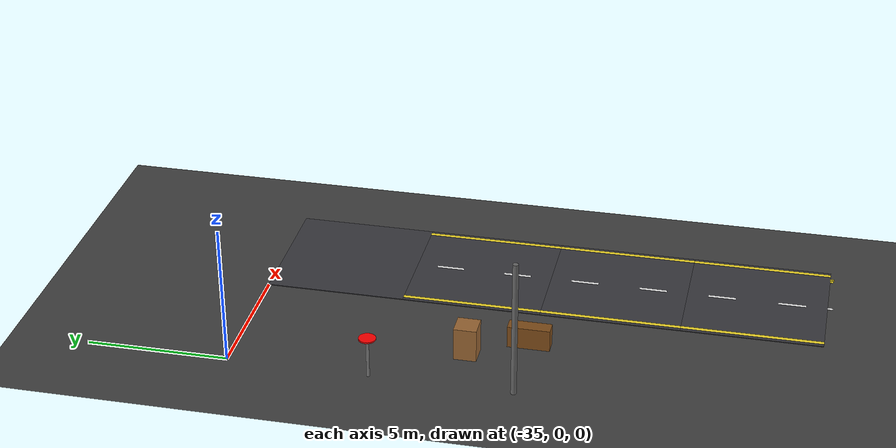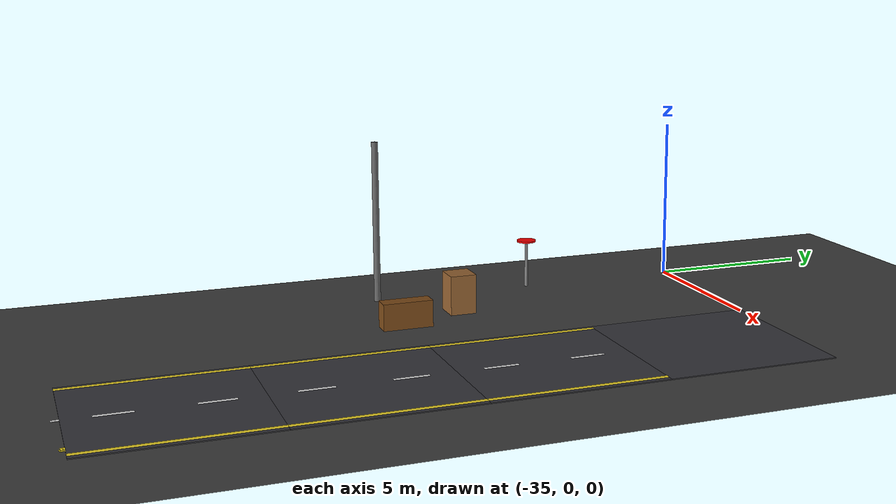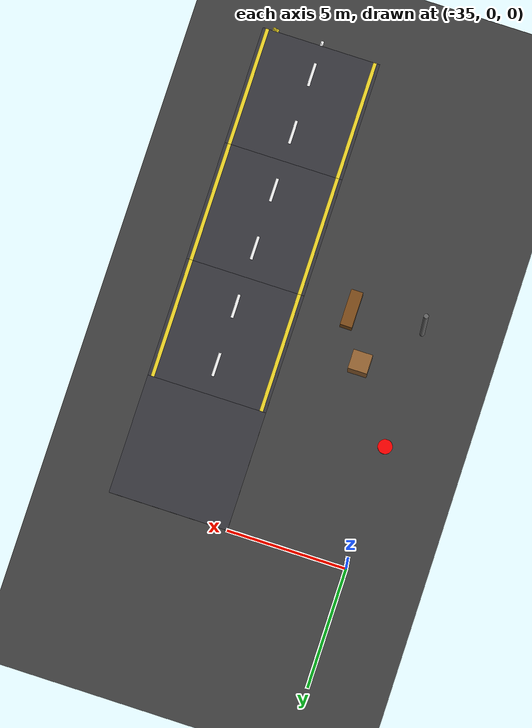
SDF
<sdf version="1.7">
 <world name="compact_city">
  <model name="ground_plane">
   <static>1</static>
   <pose>0 0 0.01 0 -0 0</pose>
   <link name="link">
    <collision name="collision">
     <geometry><plane><normal>0 0 1</normal><size>200 200</size></plane></geometry>
    </collision>
    <visual name="visual">
     <geometry><plane><normal>0 0 1</normal><size>200 200</size></plane></geometry>
     <material>
      <ambient>0.2 0.2 0.2 1</ambient>
      <diffuse>0.25 0.25 0.25 1</diffuse>
      <specular>0.1 0.1 0.1 1</specular>
     </material>
    </visual>
   </link>
  </model>
  <model name="road_tile_45">
   <static>1</static>
   <pose>-27.5 -2.5 0.015 0 -0 0</pose>
   <link name="link">
    <collision name="collision"><geometry><box><size>5 5 0.03</size></box></geometry></collision>
    <visual name="visual">
     <geometry><box><size>5 5 0.03</size></box></geometry>
     <material>
      <ambient>0.18 0.18 0.2 1</ambient>
      <diffuse>0.22 0.22 0.24 1</diffuse>
      <specular>0.1 0.1 0.1 1</specular>
     </material>
    </visual>
   </link>
  </model>
  <model name="road_tile_56">
   <static>1</static>
   <pose>-27.5 -7.5 0.015 0 -0 1.5708</pose>
   <link name="link">
    <collision name="collision"><geometry><box><size>5 5 0.03</size></box></geometry></collision>
    <visual name="visual">
     <geometry><box><size>5 5 0.03</size></box></geometry>
     <material>
      <ambient>0.18 0.18 0.2 1</ambient>
      <diffuse>0.22 0.22 0.24 1</diffuse>
      <specular>0.1 0.1 0.1 1</specular>
     </material>
    </visual>
   </link>
  </model>
  <model name="road_tile_60">
   <static>1</static>
   <pose>-27.5 -12.5 0.015 0 -0 1.5708</pose>
   <link name="link">
    <collision name="collision"><geometry><box><size>5 5 0.03</size></box></geometry></collision>
    <visual name="visual">
     <geometry><box><size>5 5 0.03</size></box></geometry>
     <material>
      <ambient>0.18 0.18 0.2 1</ambient>
      <diffuse>0.22 0.22 0.24 1</diffuse>
      <specular>0.1 0.1 0.1 1</specular>
     </material>
    </visual>
   </link>
  </model>
  <model name="road_tile_64">
   <static>1</static>
   <pose>-27.5 -17.5 0.015 0 -0 1.5708</pose>
   <link name="link">
    <collision name="collision"><geometry><box><size>5 5 0.03</size></box></geometry></collision>
    <visual name="visual">
     <geometry><box><size>5 5 0.03</size></box></geometry>
     <material>
      <ambient>0.18 0.18 0.2 1</ambient>
      <diffuse>0.22 0.22 0.24 1</diffuse>
      <specular>0.1 0.1 0.1 1</specular>
     </material>
    </visual>
   </link>
  </model>
  <model name="el_131">
   <static>1</static>
   <pose>-29.8 -17.5 0.038 0 -0 1.5708</pose>
   <link name="link">
    <visual name="v">
     <geometry><box><size>5 0.15 0.002</size></box></geometry>
     <material><ambient>0.9 0.8 0.1 1</ambient><diffuse>0.95 0.85 0.15 1</diffuse></material>
    </visual>
   </link>
  </model>
  <model name="el_132">
   <static>1</static>
   <pose>-25.2 -17.5 0.038 0 -0 1.5708</pose>
   <link name="link">
    <visual name="v">
     <geometry><box><size>5 0.15 0.002</size></box></geometry>
     <material><ambient>0.9 0.8 0.1 1</ambient><diffuse>0.95 0.85 0.15 1</diffuse></material>
    </visual>
   </link>
  </model>
  <model name="el_133">
   <static>1</static>
   <pose>-29.8 -12.5 0.038 0 -0 1.5708</pose>
   <link name="link">
    <visual name="v">
     <geometry><box><size>5 0.15 0.002</size></box></geometry>
     <material><ambient>0.9 0.8 0.1 1</ambient><diffuse>0.95 0.85 0.15 1</diffuse></material>
    </visual>
   </link>
  </model>
  <model name="el_134">
   <static>1</static>
   <pose>-25.2 -12.5 0.038 0 -0 1.5708</pose>
   <link name="link">
    <visual name="v">
     <geometry><box><size>5 0.15 0.002</size></box></geometry>
     <material><ambient>0.9 0.8 0.1 1</ambient><diffuse>0.95 0.85 0.15 1</diffuse></material>
    </visual>
   </link>
  </model>
  <model name="el_135">
   <static>1</static>
   <pose>-29.8 -7.5 0.038 0 -0 1.5708</pose>
   <link name="link">
    <visual name="v">
     <geometry><box><size>5 0.15 0.002</size></box></geometry>
     <material><ambient>0.9 0.8 0.1 1</ambient><diffuse>0.95 0.85 0.15 1</diffuse></material>
    </visual>
   </link>
  </model>
  <model name="el_136">
   <static>1</static>
   <pose>-25.2 -7.5 0.038 0 -0 1.5708</pose>
   <link name="link">
    <visual name="v">
     <geometry><box><size>5 0.15 0.002</size></box></geometry>
     <material><ambient>0.9 0.8 0.1 1</ambient><diffuse>0.95 0.85 0.15 1</diffuse></material>
    </visual>
   </link>
  </model>
  <model name="ld_1">
   <static>1</static>
   <pose>-27.5000 -18.7500 0.038 0 -0 1.5708</pose>
   <link name="link">
    <visual name="v">
     <geometry><box><size>1 0.12 0.002</size></box></geometry>
     <material><ambient>1 1 1 1</ambient><diffuse>0.95 0.95 0.95 1</diffuse></material>
    </visual>
   </link>
  </model>
  <model name="ld_2">
   <static>1</static>
   <pose>-27.5000 -16.2500 0.038 0 -0 1.5708</pose>
   <link name="link">
    <visual name="v">
     <geometry><box><size>1 0.12 0.002</size></box></geometry>
     <material><ambient>1 1 1 1</ambient><diffuse>0.95 0.95 0.95 1</diffuse></material>
    </visual>
   </link>
  </model>
  <model name="ld_3">
   <static>1</static>
   <pose>-27.5000 -13.7500 0.038 0 -0 1.5708</pose>
   <link name="link">
    <visual name="v">
     <geometry><box><size>1 0.12 0.002</size></box></geometry>
     <material><ambient>1 1 1 1</ambient><diffuse>0.95 0.95 0.95 1</diffuse></material>
    </visual>
   </link>
  </model>
  <model name="ld_4">
   <static>1</static>
   <pose>-27.5000 -11.2500 0.038 0 -0 1.5708</pose>
   <link name="link">
    <visual name="v">
     <geometry><box><size>1 0.12 0.002</size></box></geometry>
     <material><ambient>1 1 1 1</ambient><diffuse>0.95 0.95 0.95 1</diffuse></material>
    </visual>
   </link>
  </model>
  <model name="ld_5">
   <static>1</static>
   <pose>-27.5000 -8.7500 0.038 0 -0 1.5708</pose>
   <link name="link">
    <visual name="v">
     <geometry><box><size>1 0.12 0.002</size></box></geometry>
     <material><ambient>1 1 1 1</ambient><diffuse>0.95 0.95 0.95 1</diffuse></material>
    </visual>
   </link>
  </model>
  <model name="ld_6">
   <static>1</static>
   <pose>-27.5000 -6.2500 0.038 0 -0 1.5708</pose>
   <link name="link">
    <visual name="v">
     <geometry><box><size>1 0.12 0.002</size></box></geometry>
     <material><ambient>1 1 1 1</ambient><diffuse>0.95 0.95 0.95 1</diffuse></material>
    </visual>
   </link>
  </model>
  <model name="ac_498">
   <static>1</static>
   <pose>-27.4987 -20.0818 0.038 0 0 -1.53808</pose>
   <link name="link">
    <visual name="v">
     <geometry><box><size>0.173411 0.12 0.002</size></box></geometry>
     <material><ambient>1 1 1 1</ambient><diffuse>0.95 0.95 0.95 1</diffuse></material>
    </visual>
   </link>
  </model>
  <model name="ai_522">
   <static>1</static>
   <pose>-25.4997 -20.0164 0.038 0 0 -1.53808</pose>
   <link name="link">
    <visual name="v">
     <geometry><box><size>0.04 0.15 0.002</size></box></geometry>
     <material><ambient>0.9 0.8 0.1 1</ambient><diffuse>0.95 0.85 0.15 1</diffuse></material>
    </visual>
   </link>
  </model>
  <model name="ai_523">
   <static>1</static>
   <pose>-25.4976 -20.049 0.038 0 0 -1.47259</pose>
   <link name="link">
    <visual name="v">
     <geometry><box><size>0.04 0.15 0.002</size></box></geometry>
     <material><ambient>0.9 0.8 0.1 1</ambient><diffuse>0.95 0.85 0.15 1</diffuse></material>
    </visual>
   </link>
  </model>
  <model name="ai_524">
   <static>1</static>
   <pose>-25.4933 -20.0814 0.038 0 0 -1.40718</pose>
   <link name="link">
    <visual name="v">
     <geometry><box><size>0.04 0.15 0.002</size></box></geometry>
     <material><ambient>0.9 0.8 0.1 1</ambient><diffuse>0.95 0.85 0.15 1</diffuse></material>
    </visual>
   </link>
  </model>
  <model name="ai_525">
   <static>1</static>
   <pose>-25.4869 -20.1135 0.038 0 0 -1.34169</pose>
   <link name="link">
    <visual name="v">
     <geometry><box><size>0.04 0.15 0.002</size></box></geometry>
     <material><ambient>0.9 0.8 0.1 1</ambient><diffuse>0.95 0.85 0.15 1</diffuse></material>
    </visual>
   </link>
  </model>
  <model name="bench_7">
   <static>1</static>
   <pose>-32 -10 0.4 0 -0 1.57</pose>
   <link name="link">
    <collision name="collision"><geometry><box><size>1.5 0.5 0.8</size></box></geometry></collision>
    <visual name="visual">
     <geometry><box><size>1.5 0.5 0.8</size></box></geometry>
     <material><ambient>0.5 0.3 0.1 1</ambient><diffuse>0.5 0.3 0.1 1</diffuse></material>
    </visual>
   </link>
  </model>
  <model name="sign_6">
   <static>1</static>
   <pose>-35 -5 1.5 0 -0 1.57</pose>
   <link name="link">
    <collision name="collision">
     <geometry><cylinder><radius>0.3</radius><length>0.05</length></cylinder></geometry>
    </collision>
    <visual name="visual">
     <geometry><cylinder><radius>0.3</radius><length>0.05</length></cylinder></geometry>
     <material><ambient>1 0 0 1</ambient><diffuse>1 0 0 1</diffuse></material>
    </visual>
    <collision name="pole_col">
     <pose>0 0 -0.75 0 -0 0</pose>
     <geometry><cylinder><radius>0.05</radius><length>1.5</length></cylinder></geometry>
    </collision>
    <visual name="pole">
     <pose>0 0 -0.75 0 -0 0</pose>
     <geometry><cylinder><radius>0.05</radius><length>1.5</length></cylinder></geometry>
     <material><ambient>0.5 0.5 0.5 1</ambient><diffuse>0.5 0.5 0.5 1</diffuse></material>
    </visual>
   </link>
  </model>
  <model name="pole_7">
   <static>1</static>
   <pose>-35 -10 2.5 0 -0 0</pose>
   <link name="link">
    <collision name="collision">
     <geometry><cylinder><radius>0.1</radius><length>5</length></cylinder></geometry>
    </collision>
    <visual name="visual">
     <geometry><cylinder><radius>0.1</radius><length>5</length></cylinder></geometry>
     <material><ambient>0.3 0.3 0.3 1</ambient><diffuse>0.4 0.4 0.4 1</diffuse></material>
    </visual>
   </link>
  </model>
  <model name="box_4">
   <static>1</static>
   <pose>-33 -8 0.6 0 -0 0</pose>
   <link name="link">
    <collision name="collision"><geometry><box><size>0.8 0.8 1.2</size></box></geometry></collision>
    <visual name="visual">
     <geometry><box><size>0.8 0.8 1.2</size></box></geometry>
     <material><ambient>0.6 0.4 0.2 1</ambient><diffuse>0.6 0.4 0.2 1</diffuse></material>
    </visual>
   </link>
  </model>
  <model name="arc_c_325">
   <static>1</static>
   <pose>-27.4961 -20.0981 0.038 0 0 -1.5315</pose>
   <link name="link">
    <visual name="visual">
     <geometry><box><size>0.216299 0.12 0.002</size></box></geometry>
     <material><ambient>1 1 1 1</ambient><diffuse>0.95 0.95 0.95 1</diffuse></material>
    </visual>
   </link>
  </model>
  <model name="arc_in_345">
   <static>1</static>
   <pose>-25.5991 -20.0235 0.038 0 0 -1.5315</pose>
   <link name="link">
    <visual name="visual">
     <geometry><box><size>0.067112 0.15 0.002</size></box></geometry>
     <material><ambient>0.95 0.85 0.1 1</ambient><diffuse>1 0.9 0.15 1</diffuse></material>
    </visual>
   </link>
  </model>
  <model name="arc_in_346">
   <static>1</static>
   <pose>-25.5954 -20.0705 0.038 0 0 -1.453</pose>
   <link name="link">
    <visual name="visual">
     <geometry><box><size>0.067112 0.15 0.002</size></box></geometry>
     <material><ambient>0.95 0.85 0.1 1</ambient><diffuse>1 0.9 0.15 1</diffuse></material>
    </visual>
   </link>
  </model>
 </world>
</sdf>
